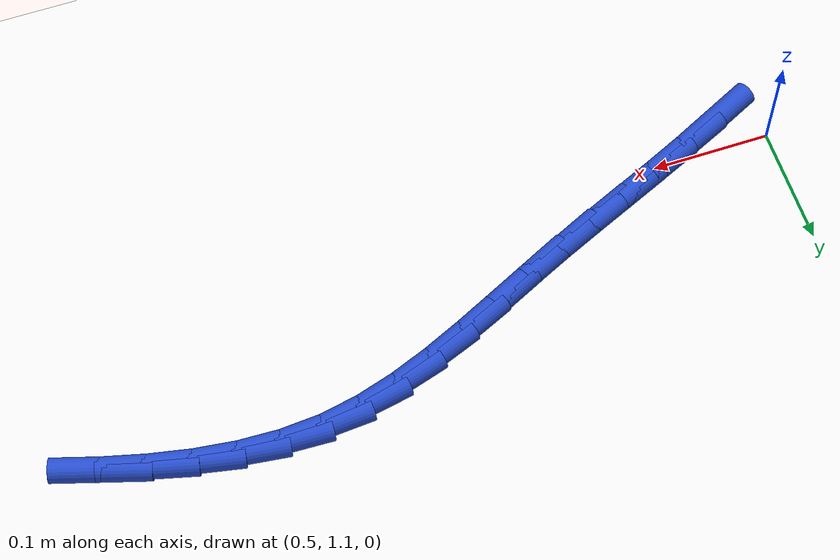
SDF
<sdf version="1.6">
 <world name="default">
  <model name="ground_plane">
   <static>1</static>
   <link name="link">
    <collision name="collision">
     <geometry><plane><normal>0 0 1</normal><size>100 100</size></plane></geometry>
     <surface><friction><ode><mu>100</mu><mu2>50</mu2></ode></friction></surface>
    </collision>
    <visual name="visual">
     <cast_shadows>0</cast_shadows>
     <geometry><plane><normal>0 0 1</normal><size>100 100</size></plane></geometry>
     <material>
      <script><uri>file://media/materials/scripts/gazebo.material</uri><name>Gazebo/WhiteGlow</name></script>
     </material>
    </visual>
   </link>
  </model>
  <model name="line">
   <link name="link_36">
    <pose>0.5402599329015851 1.078089490784339 0.01 0 1.57 0.44901230556782984</pose>
    <collision name="collision">
     <geometry><cylinder><radius>0.01</radius><length>0.08</length></cylinder></geometry>
    </collision>
    <visual name="visual">
     <material>
      <script><name>Gazebo/Blue</name><uri>file://media/materials/scripts/gazebo.material</uri></script>
     </material>
     <geometry><cylinder><radius>0.01</radius><length>0.08</length></cylinder></geometry>
    </visual>
   </link>
   <link name="link_37">
    <pose>0.5715239197178191 1.0931536514354858 0.01 0 1.57 0.42415045046346056</pose>
    <collision name="collision">
     <geometry><cylinder><radius>0.01</radius><length>0.08</length></cylinder></geometry>
    </collision>
    <visual name="visual">
     <material>
      <script><name>Gazebo/Blue</name><uri>file://media/materials/scripts/gazebo.material</uri></script>
     </material>
     <geometry><cylinder><radius>0.01</radius><length>0.08</length></cylinder></geometry>
    </visual>
   </link>
   <link name="link_38">
    <pose>0.603446351628939 1.107568544199691 0.01 0 1.57 0.41029324666744726</pose>
    <collision name="collision">
     <geometry><cylinder><radius>0.01</radius><length>0.08</length></cylinder></geometry>
    </collision>
    <visual name="visual">
     <material>
      <script><name>Gazebo/Blue</name><uri>file://media/materials/scripts/gazebo.material</uri></script>
     </material>
     <geometry><cylinder><radius>0.01</radius><length>0.08</length></cylinder></geometry>
    </visual>
   </link>
   <link name="link_39">
    <pose>0.6358118482366687 1.1216468843950418 0.01 0 1.57 0.4071187258648486</pose>
    <collision name="collision">
     <geometry><cylinder><radius>0.01</radius><length>0.08</length></cylinder></geometry>
    </collision>
    <visual name="visual">
     <material>
      <script><name>Gazebo/Blue</name><uri>file://media/materials/scripts/gazebo.material</uri></script>
     </material>
     <geometry><cylinder><radius>0.01</radius><length>0.08</length></cylinder></geometry>
    </visual>
   </link>
   <link name="link_40">
    <pose>0.6684050291427319 1.1357013873396256 0.01 0 1.57 0.41442895655163137</pose>
    <collision name="collision">
     <geometry><cylinder><radius>0.01</radius><length>0.08</length></cylinder></geometry>
    </collision>
    <visual name="visual">
     <material>
      <script><name>Gazebo/Blue</name><uri>file://media/materials/scripts/gazebo.material</uri></script>
     </material>
     <geometry><cylinder><radius>0.01</radius><length>0.08</length></cylinder></geometry>
    </visual>
   </link>
   <link name="link_41">
    <pose>0.7010105139488522 1.1500447683515298 0.01 0 1.57 0.4319963011172123</pose>
    <collision name="collision">
     <geometry><cylinder><radius>0.01</radius><length>0.08</length></cylinder></geometry>
    </collision>
    <visual name="visual">
     <material>
      <script><name>Gazebo/Blue</name><uri>file://media/materials/scripts/gazebo.material</uri></script>
     </material>
     <geometry><cylinder><radius>0.01</radius><length>0.08</length></cylinder></geometry>
    </visual>
   </link>
   <link name="link_42">
    <pose>0.7334147533012595 1.16498440040724 0.01 0 1.57 0.4482483865242856</pose>
    <collision name="collision">
     <geometry><cylinder><radius>0.01</radius><length>0.08</length></cylinder></geometry>
    </collision>
    <visual name="visual">
     <material>
      <script><name>Gazebo/Blue</name><uri>file://media/materials/scripts/gazebo.material</uri></script>
     </material>
     <geometry><cylinder><radius>0.01</radius><length>0.08</length></cylinder></geometry>
    </visual>
   </link>
   <link name="link_43">
    <pose>0.7655394447579693 1.1804330537298264 0.01 0 1.57 0.4438429551699167</pose>
    <collision name="collision">
     <geometry><cylinder><radius>0.01</radius><length>0.08</length></cylinder></geometry>
    </collision>
    <visual name="visual">
     <material>
      <script><name>Gazebo/Blue</name><uri>file://media/materials/scripts/gazebo.material</uri></script>
     </material>
     <geometry><cylinder><radius>0.01</radius><length>0.08</length></cylinder></geometry>
    </visual>
   </link>
   <link name="link_44">
    <pose>0.797531985464357 1.1956449868067514 0.01 0 1.57 0.41644390522369173</pose>
    <collision name="collision">
     <geometry><cylinder><radius>0.01</radius><length>0.08</length></cylinder></geometry>
    </collision>
    <visual name="visual">
     <material>
      <script><name>Gazebo/Blue</name><uri>file://media/materials/scripts/gazebo.material</uri></script>
     </material>
     <geometry><cylinder><radius>0.01</radius><length>0.08</length></cylinder></geometry>
    </visual>
   </link>
   <link name="link_45">
    <pose>0.8295611949861457 1.2098119550639115 0.01 0 1.57 0.3648963116553577</pose>
    <collision name="collision">
     <geometry><cylinder><radius>0.01</radius><length>0.08</length></cylinder></geometry>
    </collision>
    <visual name="visual">
     <material>
      <script><name>Gazebo/Blue</name><uri>file://media/materials/scripts/gazebo.material</uri></script>
     </material>
     <geometry><cylinder><radius>0.01</radius><length>0.08</length></cylinder></geometry>
    </visual>
   </link>
   <link name="link_46">
    <pose>0.8617958928890589 1.2221257139272033 0.01 0 1.57 0.28778414597842195</pose>
    <collision name="collision">
     <geometry><cylinder><radius>0.01</radius><length>0.08</length></cylinder></geometry>
    </collision>
    <visual name="visual">
     <material>
      <script><name>Gazebo/Blue</name><uri>file://media/materials/scripts/gazebo.material</uri></script>
     </material>
     <geometry><cylinder><radius>0.01</radius><length>0.08</length></cylinder></geometry>
    </visual>
   </link>
   <link name="link_47">
    <pose>0.8944048987388195 1.231778018822522 0.01 0 1.57 0.18437723854569438</pose>
    <collision name="collision">
     <geometry><cylinder><radius>0.01</radius><length>0.08</length></cylinder></geometry>
    </collision>
    <visual name="visual">
     <material>
      <script><name>Gazebo/Blue</name><uri>file://media/materials/scripts/gazebo.material</uri></script>
     </material>
     <geometry><cylinder><radius>0.01</radius><length>0.08</length></cylinder></geometry>
    </visual>
   </link>
   <link name="link_48">
    <pose>0.9275570033969005 1.2379607320021535 0.01 0 1.57 0.06461855630904617</pose>
    <collision name="collision">
     <geometry><cylinder><radius>0.01</radius><length>0.08</length></cylinder></geometry>
    </collision>
    <visual name="visual">
     <material>
      <script><name>Gazebo/Blue</name><uri>file://media/materials/scripts/gazebo.material</uri></script>
     </material>
     <geometry><cylinder><radius>0.01</radius><length>0.08</length></cylinder></geometry>
    </visual>
   </link>
   <link name="link_49">
    <pose>0.9613453811210377 1.2401471321849646 0.01 0 1.57 -0.04211946598836702</pose>
    <collision name="collision">
     <geometry><cylinder><radius>0.01</radius><length>0.08</length></cylinder></geometry>
    </collision>
    <visual name="visual">
     <material>
      <script><name>Gazebo/Blue</name><uri>file://media/materials/scripts/gazebo.material</uri></script>
     </material>
     <geometry><cylinder><radius>0.01</radius><length>0.08</length></cylinder></geometry>
    </visual>
   </link>
   <link name="link_50">
    <pose>0.9956235250748355 1.2387025006829482 0.01 0 1.57 -0.13039655362405744</pose>
    <collision name="collision">
     <geometry><cylinder><radius>0.01</radius><length>0.08</length></cylinder></geometry>
    </collision>
    <visual name="visual">
     <material>
      <script><name>Gazebo/Blue</name><uri>file://media/materials/scripts/gazebo.material</uri></script>
     </material>
     <geometry><cylinder><radius>0.01</radius><length>0.08</length></cylinder></geometry>
    </visual>
   </link>
   <link name="link_51">
    <pose>1.0301975509877506 1.2341684397409967 0.01 0 1.57 -0.20145964547790132</pose>
    <collision name="collision">
     <geometry><cylinder><radius>0.01</radius><length>0.08</length></cylinder></geometry>
    </collision>
    <visual name="visual">
     <material>
      <script><name>Gazebo/Blue</name><uri>file://media/materials/scripts/gazebo.material</uri></script>
     </material>
     <geometry><cylinder><radius>0.01</radius><length>0.08</length></cylinder></geometry>
    </visual>
   </link>
   <link name="link_52">
    <pose>1.0648735745892397 1.227086551604003 0.01 0 1.57 -0.25697279299731723</pose>
    <collision name="collision">
     <geometry><cylinder><radius>0.01</radius><length>0.08</length></cylinder></geometry>
    </collision>
    <visual name="visual">
     <material>
      <script><name>Gazebo/Blue</name><uri>file://media/materials/scripts/gazebo.material</uri></script>
     </material>
     <geometry><cylinder><radius>0.01</radius><length>0.08</length></cylinder></geometry>
    </visual>
   </link>
   <link name="link_53">
    <pose>1.0994577116087592 1.2179984385168605 0.01 0 1.57 -0.29848274733399255</pose>
    <collision name="collision">
     <geometry><cylinder><radius>0.01</radius><length>0.08</length></cylinder></geometry>
    </collision>
    <visual name="visual">
     <material>
      <script><name>Gazebo/Blue</name><uri>file://media/materials/scripts/gazebo.material</uri></script>
     </material>
     <geometry><cylinder><radius>0.01</radius><length>0.08</length></cylinder></geometry>
    </visual>
   </link>
  </model>
 </world>
</sdf>
